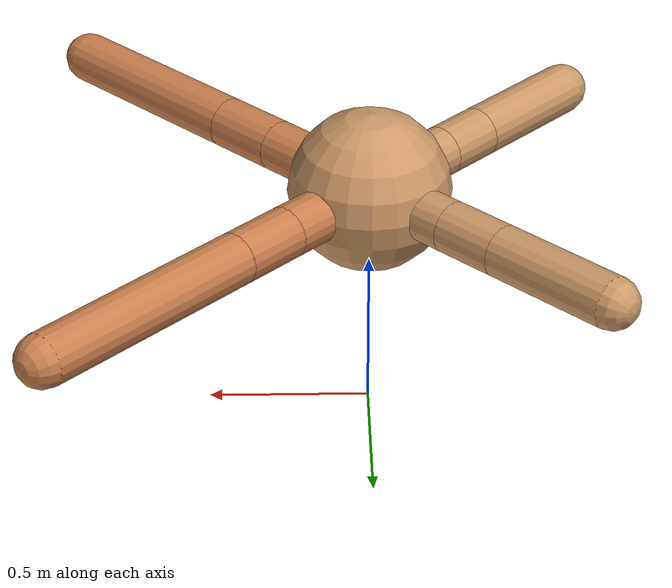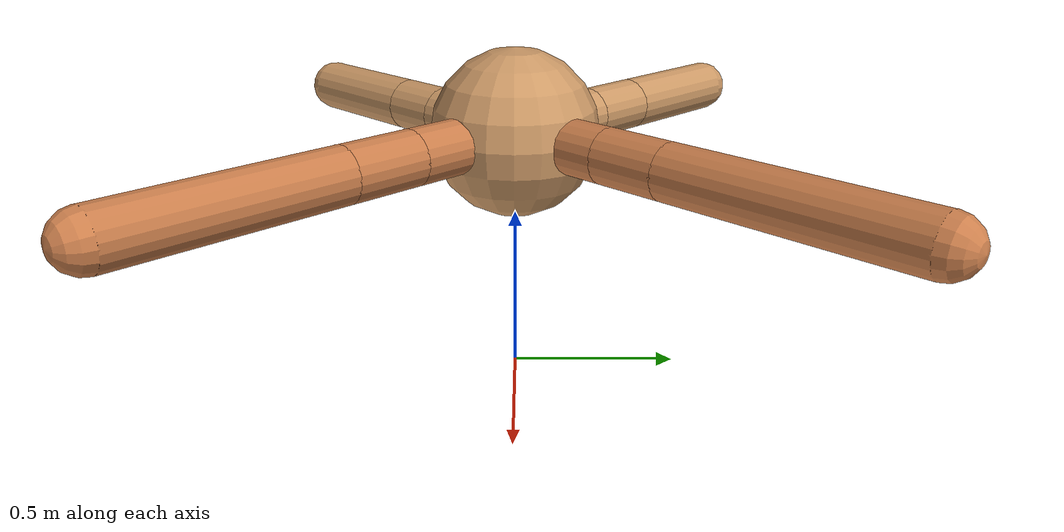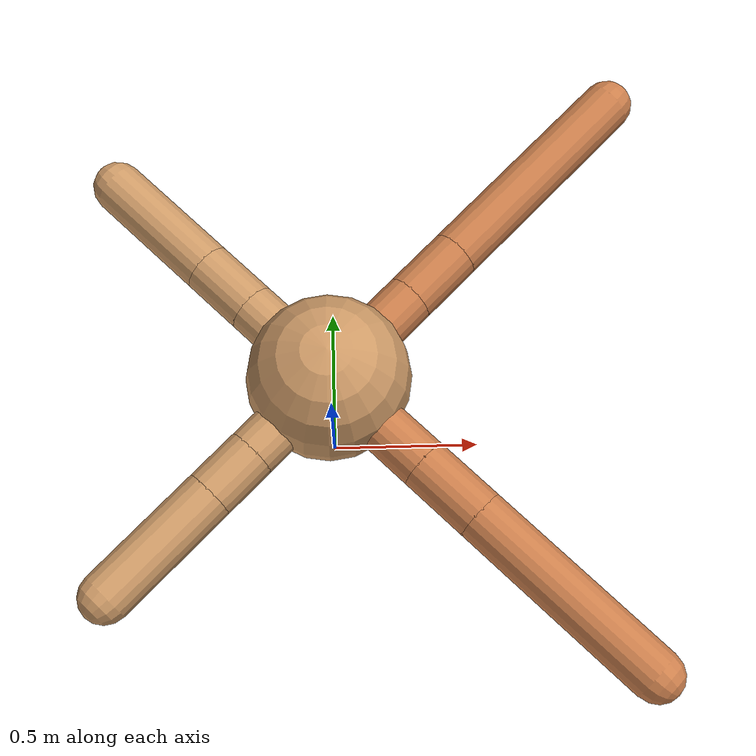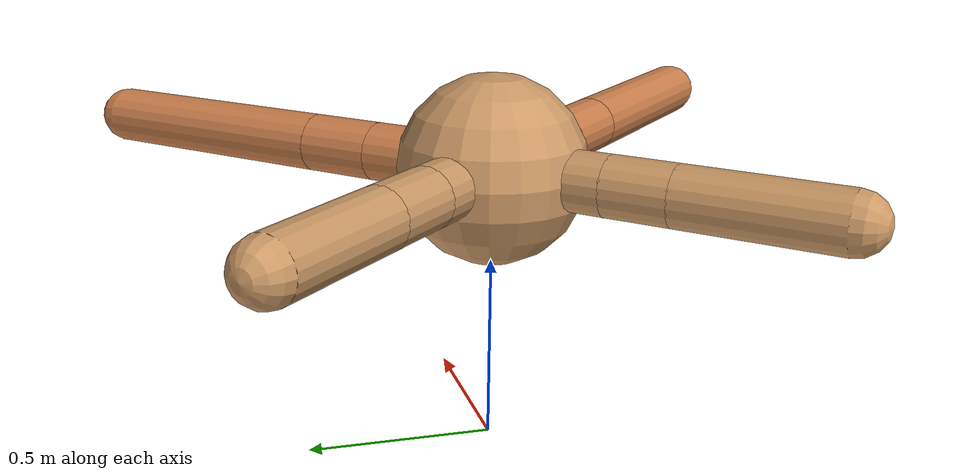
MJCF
<mujoco model="ant">
  <compiler angle="degree" coordinate="local" inertiafromgeom="true" />
  <option integrator="RK4" timestep="0.01" />
  <custom>
    <numeric data="0.0 0.0 0.55 1.0 0.0 0.0 0.0 0.0 1.0 0.0 -1.0 0.0 -1.0 0.0 1.0" name="init_qpos" />
  </custom>
  <default>
    <joint armature="1" damping="1" limited="true" />
    <geom conaffinity="0" condim="3" density="5.0" friction="1.5 0.1 0.1" margin="0.01" rgba="0.8 0.6 0.4 1" />
  </default>
  <worldbody>
    <body name="torso" pos="0 0 0.75">
      <geom name="torso_geom" pos="0 0 0" size="0.25" type="sphere" />

      <body name="front_left_leg" pos="0 0 0">
        <geom fromto="0.0 0.0 0.0 0.25187446853517687 0.25187446853517687 0.0" name="aux_1_geom" size="0.08" type="capsule" rgba=".8 .5 .3 1" />
        <body name="aux_1" pos="0.25187446853517687 0.25187446853517687 0.0">
          <joint axis="0 0 1" name="hip_1" pos="0.0 0.0 0.0" range="-40 40" type="hinge" />
          <geom fromto="0.0 0.0 0.0 0.14420405116210042 0.14420405116210042 0.0" name="left_leg_geom" size="0.08" type="capsule" rgba=".8 .5 .3 1" />
          <body pos="0.14420405116210042 0.14420405116210042 0.0" name="front_left_foot">
            <joint axis="-1 1 0" name="ankle_1" pos="0.0 0.0 0.0" range="30 100" type="hinge" />
            <geom fromto="0.0 0.0 0.0 0.5135730414997336 0.5135730414997336 0.0" name="left_ankle_geom" size="0.08" type="capsule" rgba=".8 .5 .3 1" />
          </body>
        </body>
      </body>
      <body name="front_right_leg" pos="0 0 0">
        <geom fromto="0.0 0.0 0.0 -0.23124500995449077 0.23124500995449077 0.0" name="aux_2_geom" size="0.08" type="capsule" />
        <body name="aux_2" pos="-0.23124500995449077 0.23124500995449077 0.0">
          <joint axis="0 0 1" name="hip_2" pos="0.0 0.0 0.0" range="-40 40" type="hinge" />
          <geom fromto="0.0 0.0 0.0 -0.13748980135446273 0.13748980135446273 0.0" name="right_leg_geom" size="0.08" type="capsule" />
          <body pos="-0.13748980135446273 0.13748980135446273 0.0" name="front_right_foot">
            <joint axis="1 1 0" name="ankle_2" pos="0.0 0.0 0.0" range="-100 -30" type="hinge" />
            <geom fromto="0.0 0.0 0.0 -0.285292190307334 0.285292190307334 0.0" name="right_ankle_geom" size="0.08" type="capsule" />
          </body>
        </body>
      </body>
      <body name="left_back_leg" pos="0 0 0">
        <geom fromto="0.0 0.0 0.0 -0.2301482263219904 -0.2301482263219904 0.0" name="aux_3_geom" size="0.08" type="capsule" />
        <body name="aux_3" pos="-0.2301482263219904 -0.2301482263219904 0.0">
          <joint axis="0 0 1" name="hip_3" pos="0.0 0.0 0.0" range="-40 40" type="hinge" />
          <geom fromto="0.0 0.0 0.0 -0.12171520300853927 -0.12171520300853927 0.0" name="back_leg_geom" size="0.08" type="capsule" />
          <body pos="-0.12171520300853927 -0.12171520300853927 0.0" name="left_back_foot">
            <joint axis="-1 1 0" name="ankle_3" pos="0.0 0.0 0.0" range="-100 -30" type="hinge" />
            <geom fromto="0.0 0.0 0.0 -0.2923015364493557 -0.2923015364493557 0.0" name="third_ankle_geom" size="0.08" type="capsule" />
          </body>
        </body>
      </body>
      <body name="right_back_leg" pos="0 0 0">
        <geom fromto="0.0 0.0 0.0 0.27527128397803285 -0.27527128397803285 0.0" name="aux_4_geom" size="0.08" type="capsule" rgba=".8 .5 .3 1" />
        <body name="aux_4" pos="0.27527128397803285 -0.27527128397803285 0.0">
          <joint axis="0 0 1" name="hip_4" pos="0.0 0.0 0.0" range="-40 40" type="hinge" />
          <geom fromto="0.0 0.0 0.0 0.1569979856234607 -0.1569979856234607 0.0" name="rightback_leg_geom" size="0.08" type="capsule" rgba=".8 .5 .3 1" />
          <body pos="0.1569979856234607 -0.1569979856234607 0.0" name="right_back_foot">
            <joint axis="1 1 0" name="ankle_4" pos="0.0 0.0 0.0" range="30 100" type="hinge" />
            <geom fromto="0.0 0.0 0.0 0.46867382645941746 -0.46867382645941746 0.0" name="fourth_ankle_geom" size="0.08" type="capsule" rgba=".8 .5 .3 1" />
          </body>
        </body>
      </body>
    </body>
  </worldbody>
  <actuator>
    <motor ctrllimited="true" ctrlrange="-1.0 1.0" joint="hip_4" gear="150" />
    <motor ctrllimited="true" ctrlrange="-1.0 1.0" joint="ankle_4" gear="150" />
    <motor ctrllimited="true" ctrlrange="-1.0 1.0" joint="hip_1" gear="150" />
    <motor ctrllimited="true" ctrlrange="-1.0 1.0" joint="ankle_1" gear="150" />
    <motor ctrllimited="true" ctrlrange="-1.0 1.0" joint="hip_2" gear="150" />
    <motor ctrllimited="true" ctrlrange="-1.0 1.0" joint="ankle_2" gear="150" />
    <motor ctrllimited="true" ctrlrange="-1.0 1.0" joint="hip_3" gear="150" />
    <motor ctrllimited="true" ctrlrange="-1.0 1.0" joint="ankle_3" gear="150" />
  </actuator>
</mujoco>
